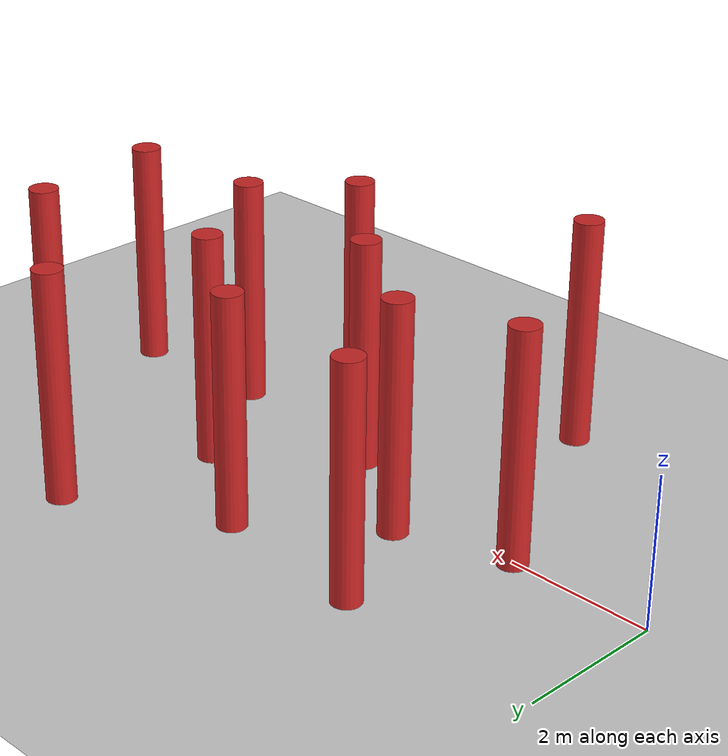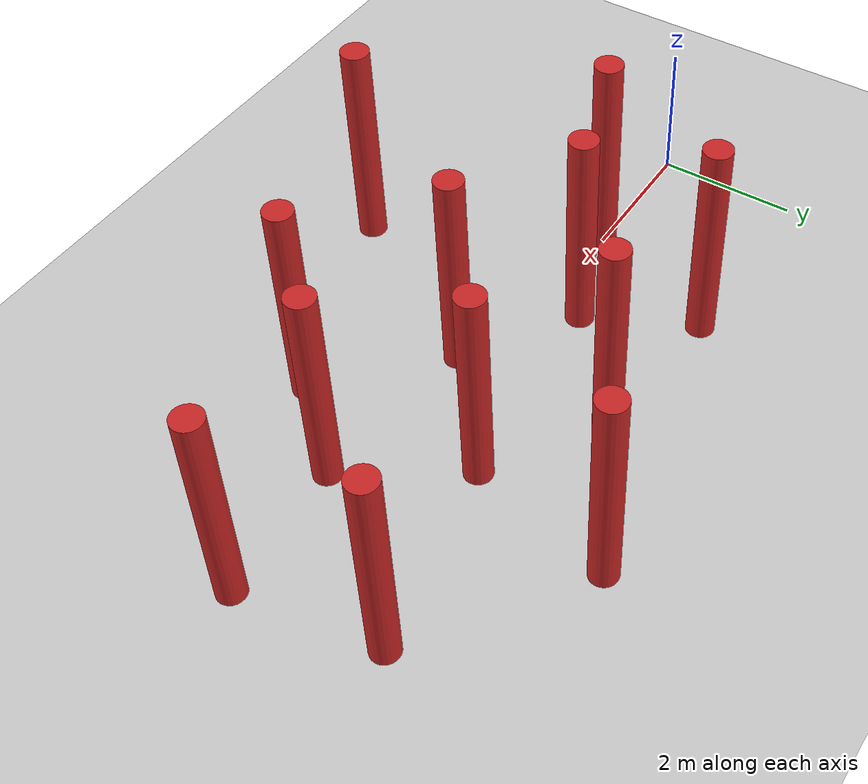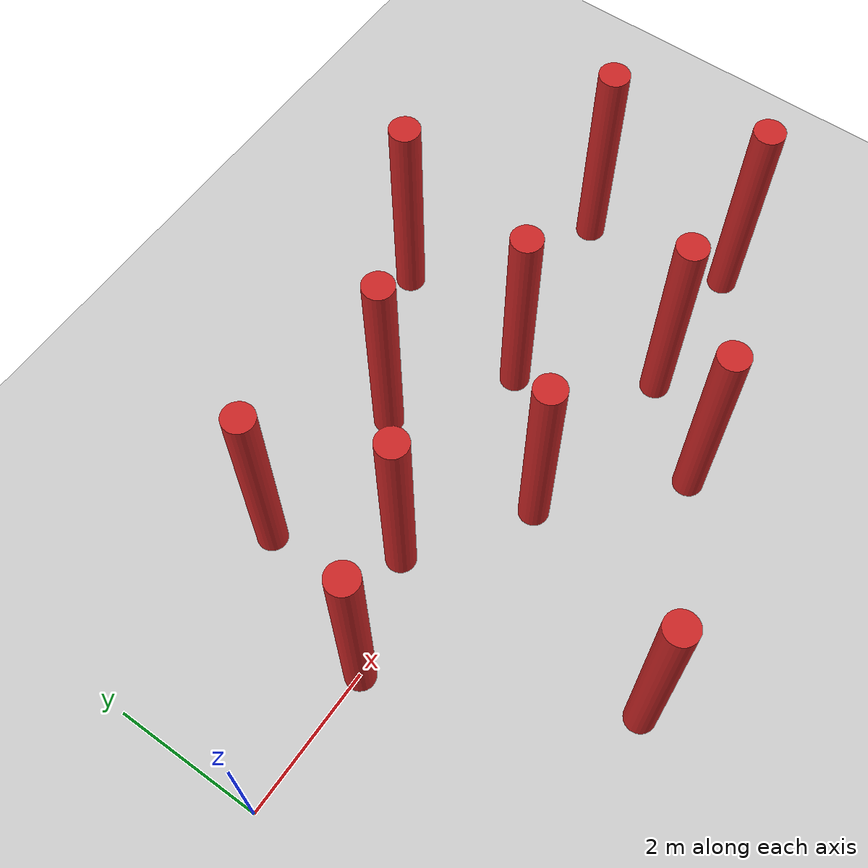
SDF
<?xml version="1.0" ?>
<sdf version="1.5">
  <world name="default">
    <!-- A global light source -->
    <include>
      <uri>model://sun</uri>
    </include>
    <!-- A ground plane -->
    <include>
      <uri>model://ground_plane</uri>
    </include>
    <include>
      <uri>model://asphalt_plane</uri>
    </include>
    <physics name='default_physics' default='0' type='ode'>
      <gravity>0 0 -9.8066</gravity>
      <ode>
        <solver>
          <type>quick</type>
          <iters>10</iters>
          <sor>1.3</sor>
          <use_dynamic_moi_rescaling>0</use_dynamic_moi_rescaling>
        </solver>
        <constraints>
          <cfm>0</cfm>
          <erp>0.2</erp>
          <contact_max_correcting_vel>100</contact_max_correcting_vel>
          <contact_surface_layer>0.001</contact_surface_layer>
        </constraints>
      </ode>
      <max_step_size>0.004</max_step_size>
      <real_time_factor>1</real_time_factor>
      <real_time_update_rate>250</real_time_update_rate>
      <magnetic_field>6.0e-6 2.3e-5 -4.2e-5</magnetic_field>
    </physics>

    <!-- COLLUMS -->

<include>
      <name>collum 1</name>
      <uri>model://collum</uri>
      <pose>2.0 0.0 1.5  0 0 0</pose>
    </include>

<include>
      <name>collum 2</name>
      <uri>model://collum</uri>
      <pose>6.5 -1.9 1.5  0 0 0</pose>
    </include>

<include>
      <name>collum 3</name>
      <uri>model://collum</uri>
      <pose>5.0 -0.5 1.5  0 0 0</pose>
    </include>

<include>
      <name>collum 4</name>
      <uri>model://collum</uri>
      <pose>3.5 0.5 1.5  0 0 0</pose>
    </include>

<include>
      <name>collum 5</name>
      <uri>model://collum</uri>
      <pose>2.8 2.0 1.5  0 0 0</pose>
    </include>

<include>
      <name>collum 6</name>
      <uri>model://collum</uri>
      <pose>7.5 -0.8 1.5  0 0 0</pose>
    </include>

<include>
      <name>collum 7</name>
      <uri>model://collum</uri>
      <pose>6.5 0.8 1.5  0 0 0</pose>
    </include>

<include>
      <name>collum 8</name>
      <uri>model://collum</uri>
      <pose>5.0 1.8 1.5  0 0 0</pose>
    </include>

<include>
      <name>collum 9</name>
      <uri>model://collum</uri>
      <pose>7.0 2.9 1.5  0 0 0</pose>
    </include>

<include>
      <name>collum 10</name>
      <uri>model://collum</uri>
      <pose>9.2 1.3 1.5  0 0 0</pose>
    </include>

<include>
      <name>collum 11</name>
      <uri>model://collum</uri>
      <pose>9.5 -0.7 1.5  0 0 0</pose>
    </include>

<include>
      <name>collum 12</name>
      <uri>model://collum</uri>
      <pose>3.5 -3.0 1.5  0 0 0</pose>
    </include>

  </world>
</sdf>

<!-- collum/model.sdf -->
<sdf version='1.6'>
  <model name='collum'>
    <link name='unit_cylinder::link'>
      <inertial>
        <mass>50</mass>
        <inertia>
          <ixx>45.0247</ixx>
          <ixy>0</ixy>
          <ixz>0</ixz>
          <iyy>45.0247</iyy>
          <iyz>0</iyz>
          <izz>1.00621</izz>
        </inertia>
        <pose frame=''>0 0 0 0 -0 0</pose>
      </inertial>
      <self_collide>0</self_collide>
      <enable_wind>0</enable_wind>
      <kinematic>0</kinematic>
      <pose frame=''>0 0 0 0 -0 0</pose>
      <gravity>0</gravity>
      <visual name='visual'>
        <geometry>
          <cylinder>
            <radius>0.20062</radius>
            <length>3.26882</length>
          </cylinder>
        </geometry>
        <material>
          <script>
            <name>Gazebo/Red</name>
            <uri>file://media/materials/scripts/gazebo.material</uri>
          </script>
          <shader type='pixel'>
            <normal_map>__default__</normal_map>
          </shader>
          <ambient>1 0 0 1</ambient>
          <diffuse>1 0 0 1</diffuse>
          <specular>0.1 0.1 0.1 1</specular>
          <emissive>0 0 0 1</emissive>
        </material>
        <pose frame=''>0 0 0 0 -0 0</pose>
        <transparency>0</transparency>
        <cast_shadows>1</cast_shadows>
      </visual>
      <collision name='collision'>
        <laser_retro>0</laser_retro>
        <max_contacts>10</max_contacts>
        <pose frame=''>0 0 0 0 -0 0</pose>
        <geometry>
          <cylinder>
            <radius>0.20062</radius>
            <length>3.26882</length>
          </cylinder>
        </geometry>
        <surface>
          <friction>
            <ode>
              <mu>1</mu>
              <mu2>1</mu2>
              <fdir1>0 0 0</fdir1>
              <slip1>0</slip1>
              <slip2>0</slip2>
            </ode>
            <torsional>
              <coefficient>1</coefficient>
              <patch_radius>0</patch_radius>
              <surface_radius>0</surface_radius>
              <use_patch_radius>1</use_patch_radius>
              <ode>
                <slip>0</slip>
              </ode>
            </torsional>
          </friction>
          <bounce>
            <restitution_coefficient>0</restitution_coefficient>
            <threshold>1e+06</threshold>
          </bounce>
          <contact>
            <collide_without_contact>0</collide_without_contact>
            <collide_without_contact_bitmask>1</collide_without_contact_bitmask>
            <collide_bitmask>1</collide_bitmask>
            <ode>
              <soft_cfm>0</soft_cfm>
              <soft_erp>0.2</soft_erp>
              <kp>1e+13</kp>
              <kd>1</kd>
              <max_vel>0.01</max_vel>
              <min_depth>0</min_depth>
            </ode>
            <bullet>
              <split_impulse>1</split_impulse>
              <split_impulse_penetration_threshold>-0.01</split_impulse_penetration_threshold>
              <soft_cfm>0</soft_cfm>
              <soft_erp>0.2</soft_erp>
              <kp>1e+13</kp>
              <kd>1</kd>
            </bullet>
          </contact>
        </surface>
      </collision>
    </link>
    <static>1</static>
    <allow_auto_disable>1</allow_auto_disable>
  </model>
</sdf>
